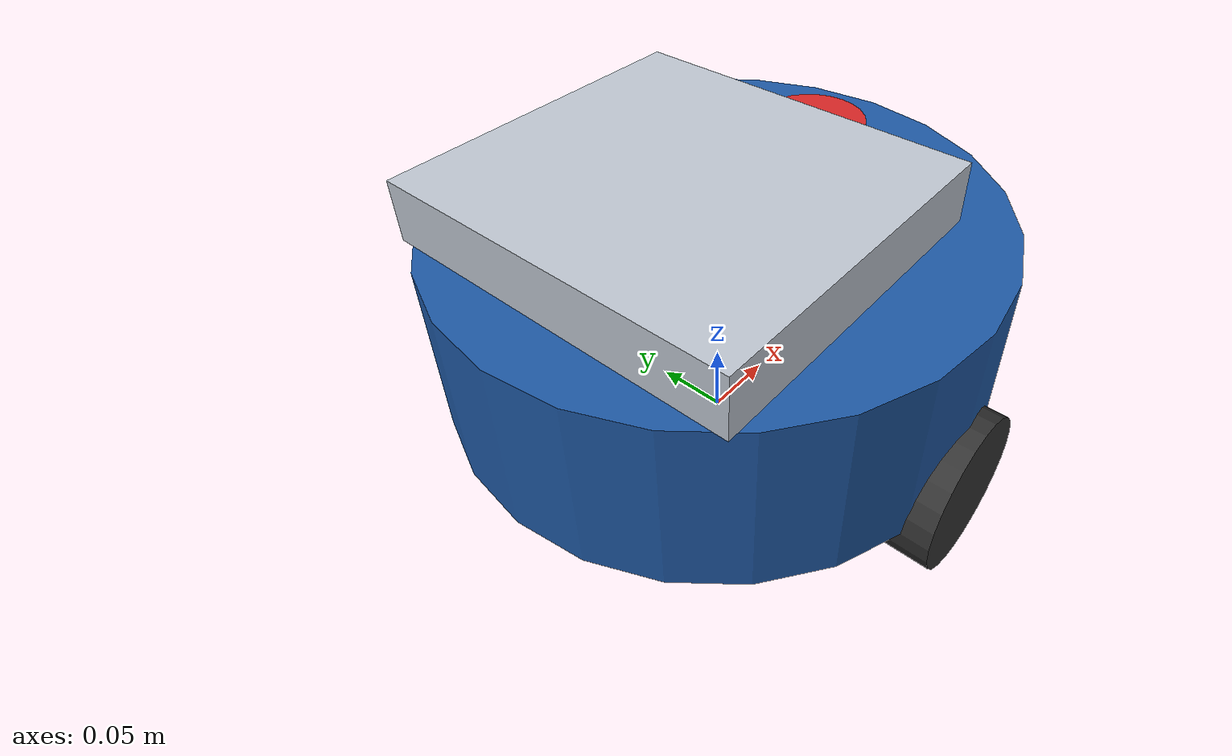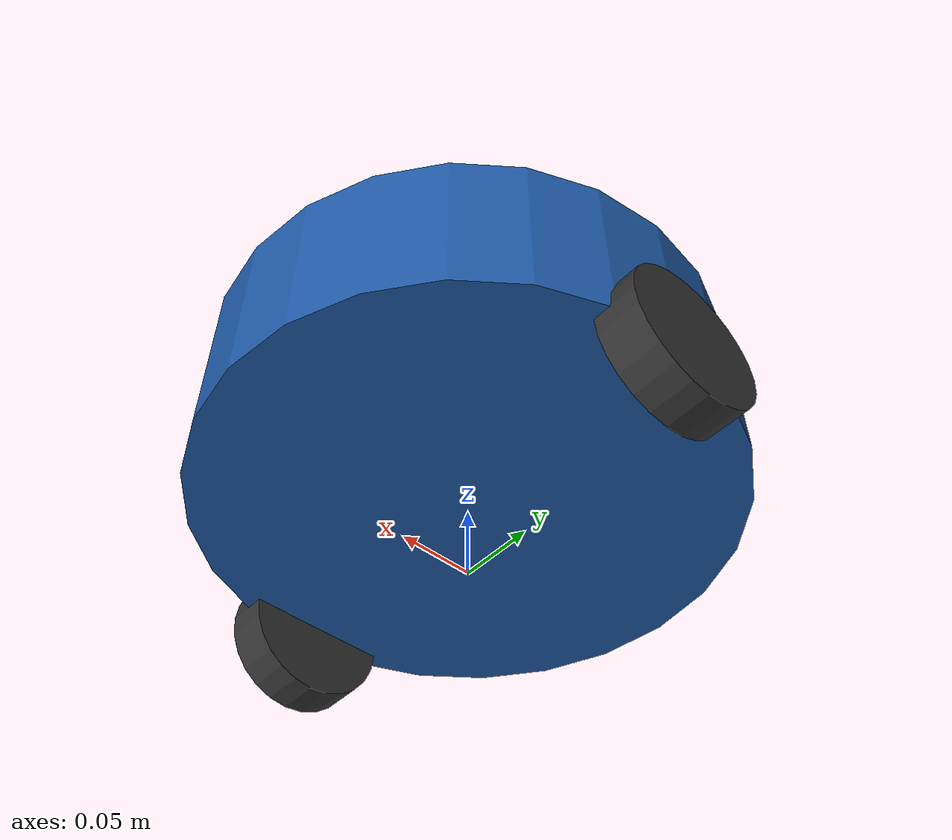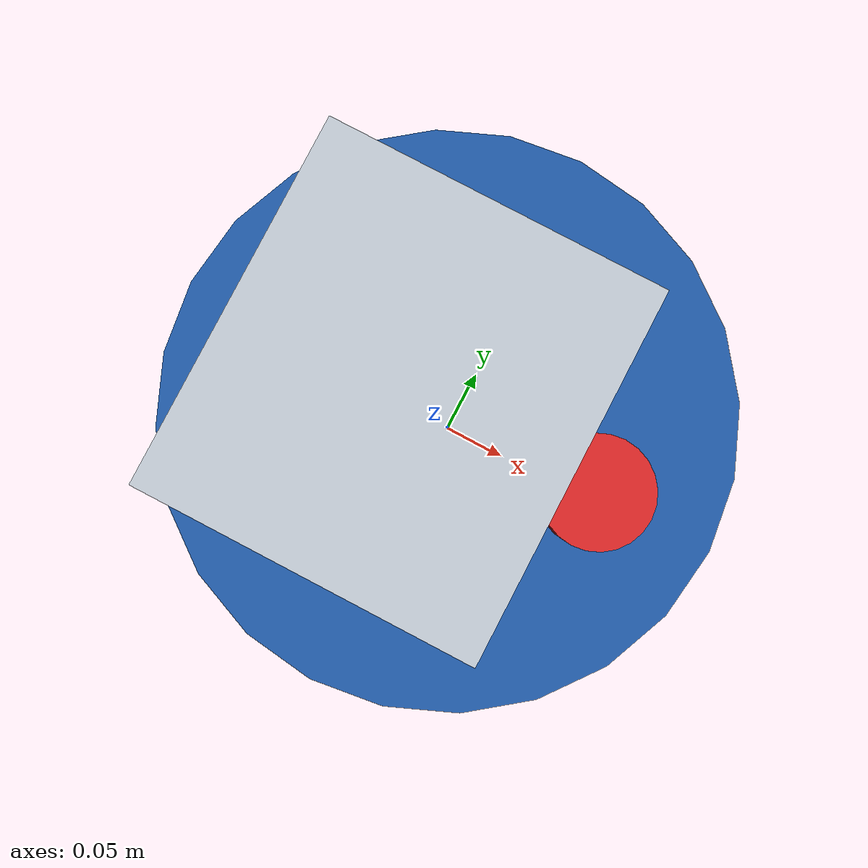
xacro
<?xml version="1.0"?>
<robot xmlns:xacro="http://www.ros.org/wiki/xacro" name="office_delivery_bot">

  <xacro:property name="wheel_radius" value="0.05"/>
  <xacro:property name="wheel_width" value="0.03"/>
  <xacro:property name="wheel_separation" value="0.35"/>
  <xacro:property name="body_radius" value="0.18"/>
  <xacro:property name="body_height" value="0.12"/>

  <material name="office_blue"><color rgba="0.12 0.35 0.65 1.0"/></material>
  <material name="dark_grey"><color rgba="0.2 0.2 0.2 1.0"/></material>
  <material name="tray_silver"><color rgba="0.75 0.78 0.82 1.0"/></material>
  <material name="sensor_red"><color rgba="0.85 0.15 0.15 1.0"/></material>

  <link name="base_footprint"/>

  <joint name="base_footprint_joint" type="fixed">
    <parent link="base_footprint"/>
    <child link="base_link"/>
    <origin xyz="0 0 ${wheel_radius}" rpy="0 0 0"/>
  </joint>

  <link name="base_link">
    <visual>
      <origin xyz="0 0 ${body_height/2}" rpy="0 0 0"/>
      <geometry><cylinder radius="${body_radius}" length="${body_height}"/></geometry>
      <material name="office_blue"/>
    </visual>
    <collision>
      <origin xyz="0 0 ${body_height/2}" rpy="0 0 0"/>
      <geometry><cylinder radius="${body_radius}" length="${body_height}"/></geometry>
    </collision>
    <inertial>
      <origin xyz="0 0 ${body_height/2}" rpy="0 0 0"/>
      <mass value="4.0"/>
      <inertia ixx="0.037" ixy="0.0" ixz="0.0" iyy="0.037" iyz="0.0" izz="0.064"/>
    </inertial>
  </link>

  <link name="document_tray_link">
    <visual>
      <origin xyz="-0.03 0 0.02" rpy="0 0 0"/>
      <geometry><box size="0.22 0.24 0.04"/></geometry>
      <material name="tray_silver"/>
    </visual>
    <collision>
      <origin xyz="-0.03 0 0.02" rpy="0 0 0"/>
      <geometry><box size="0.22 0.24 0.04"/></geometry>
    </collision>
    <inertial>
      <mass value="0.3"/>
      <inertia ixx="0.001" ixy="0.0" ixz="0.0" iyy="0.001" iyz="0.0" izz="0.002"/>
    </inertial>
  </link>

  <joint name="document_tray_joint" type="fixed">
    <parent link="base_link"/>
    <child link="document_tray_link"/>
    <origin xyz="0 0 ${body_height}" rpy="0 0 0"/>
  </joint>

  <link name="laser_link">
    <visual>
      <origin xyz="0 0 0" rpy="0 0 0"/>
      <geometry><cylinder radius="0.035" length="0.04"/></geometry>
      <material name="sensor_red"/>
    </visual>
    <collision>
      <origin xyz="0 0 0" rpy="0 0 0"/>
      <geometry><cylinder radius="0.035" length="0.04"/></geometry>
    </collision>
    <inertial>
      <mass value="0.15"/>
      <inertia ixx="0.0001" ixy="0.0" ixz="0.0" iyy="0.0001" iyz="0.0" izz="0.0001"/>
    </inertial>
  </link>

  <joint name="laser_joint" type="fixed">
    <parent link="base_link"/>
    <child link="laser_link"/>
    <origin xyz="0.10 0 0.12" rpy="0 0 0"/>
  </joint>

  <gazebo reference="laser_joint">
    <preserveFixedJoint>true</preserveFixedJoint>
  </gazebo>

  <xacro:macro name="drive_wheel" params="prefix y_Sign">
    <link name="${prefix}_wheel_link">
      <visual>
        <origin xyz="0 0 0" rpy="${pi/2} 0 0"/>
        <geometry><cylinder radius="${wheel_radius}" length="${wheel_width}"/></geometry>
        <material name="dark_grey"/>
      </visual>
      <collision>
        <origin xyz="0 0 0" rpy="${pi/2} 0 0"/>
        <geometry><cylinder radius="${wheel_radius}" length="${wheel_width}"/></geometry>
      </collision>
      <inertial>
        <mass value="0.25"/>
        <inertia ixx="0.0002" ixy="0.0" ixz="0.0" iyy="0.0003" iyz="0.0" izz="0.0002"/>
      </inertial>
    </link>

    <joint name="${prefix}_wheel_joint" type="continuous">
      <parent link="base_link"/>
      <child link="${prefix}_wheel_link"/>
      <origin xyz="0 ${y_Sign * wheel_separation / 2} 0" rpy="0 0 0"/>
      <axis xyz="0 1 0"/>
    </joint>

    <gazebo reference="${prefix}_wheel_link">
      <mu1>2.0</mu1>
      <mu2>2.0</mu2>
    </gazebo>
  </xacro:macro>

  <xacro:drive_wheel prefix="left" y_Sign="1"/>
  <xacro:drive_wheel prefix="right" y_Sign="-1"/>

  <link name="front_caster_link">
    <collision>
      <origin xyz="0 0 0" rpy="0 0 0"/>
      <geometry><sphere radius="0.024"/></geometry>
    </collision>
    <inertial>
      <mass value="0.1"/>
      <inertia ixx="0.00001" ixy="0.0" ixz="0.0" iyy="0.00001" iyz="0.0" izz="0.00001"/>
    </inertial>
  </link>
  <joint name="front_caster_joint" type="fixed">
    <parent link="base_link"/>
    <child link="front_caster_link"/>
    <origin xyz="0.12 0 -0.025" rpy="0 0 0"/>
  </joint>
  <gazebo reference="front_caster_joint">
    <preserveFixedJoint>true</preserveFixedJoint>
  </gazebo>
  <gazebo reference="front_caster_link">
    <mu1>0.0</mu1>
    <mu2>0.0</mu2>
  </gazebo>

  <link name="rear_caster_link">
    <collision>
      <origin xyz="0 0 0" rpy="0 0 0"/>
      <geometry><sphere radius="0.024"/></geometry>
    </collision>
    <inertial>
      <mass value="0.1"/>
      <inertia ixx="0.00001" ixy="0.0" ixz="0.0" iyy="0.00001" iyz="0.0" izz="0.00001"/>
    </inertial>
  </link>
  <joint name="rear_caster_joint" type="fixed">
    <parent link="base_link"/>
    <child link="rear_caster_link"/>
    <origin xyz="-0.12 0 -0.025" rpy="0 0 0"/>
  </joint>
  <gazebo reference="rear_caster_joint">
    <preserveFixedJoint>true</preserveFixedJoint>
  </gazebo>
  <gazebo reference="rear_caster_link">
    <mu1>0.0</mu1>
    <mu2>0.0</mu2>
  </gazebo>

  <gazebo>
    <plugin filename="gz-sim-diff-drive-system" name="gz::sim::systems::DiffDrive">
      <left_joint>left_wheel_joint</left_joint>
      <right_joint>right_wheel_joint</right_joint>
      <wheel_separation>${wheel_separation}</wheel_separation>
      <wheel_radius>${wheel_radius}</wheel_radius>
      <max_linear_acceleration>1.0</max_linear_acceleration>
      <max_angular_acceleration>1.5</max_angular_acceleration>
      <topic>/cmd_vel</topic>
      <odom_topic>/wheel_odom_raw</odom_topic>
      <tf_topic>/wheel_tf_raw</tf_topic>
      <frame_id>odom</frame_id>
      <child_frame_id>base_footprint</child_frame_id>
      <odom_publish_frequency>30</odom_publish_frequency>
    </plugin>

    <plugin filename="gz-sim-odometry-publisher-system" name="gz::sim::systems::OdometryPublisher">
      <odom_frame>odom</odom_frame>
      <robot_base_frame>base_footprint</robot_base_frame>
      <odom_publish_frequency>50</odom_publish_frequency>
      <odom_topic>/odom</odom_topic>
      <tf_topic>/tf</tf_topic>
      <dimensions>2</dimensions>
    </plugin>

    <plugin filename="gz-sim-joint-state-publisher-system" name="gz::sim::systems::JointStatePublisher">
      <joint_name>left_wheel_joint</joint_name>
      <joint_name>right_wheel_joint</joint_name>
      <topic>/joint_states</topic>
    </plugin>
  </gazebo>

  <gazebo reference="laser_link">
    <sensor name="office_lidar" type="gpu_lidar">
      <pose>0 0 0 0 0 0</pose>
      <topic>/scan</topic>
      <update_rate>10</update_rate>
      <gz_frame_id>laser_link</gz_frame_id>
      <lidar>
        <scan>
          <horizontal>
            <samples>360</samples>
            <resolution>1</resolution>
            <min_angle>-3.14159</min_angle>
            <max_angle>3.14159</max_angle>
          </horizontal>
        </scan>
        <range>
          <min>0.12</min>
          <max>10.0</max>
          <resolution>0.01</resolution>
        </range>
      </lidar>
      <always_on>true</always_on>
      <visualize>true</visualize>
    </sensor>
  </gazebo>

</robot>
